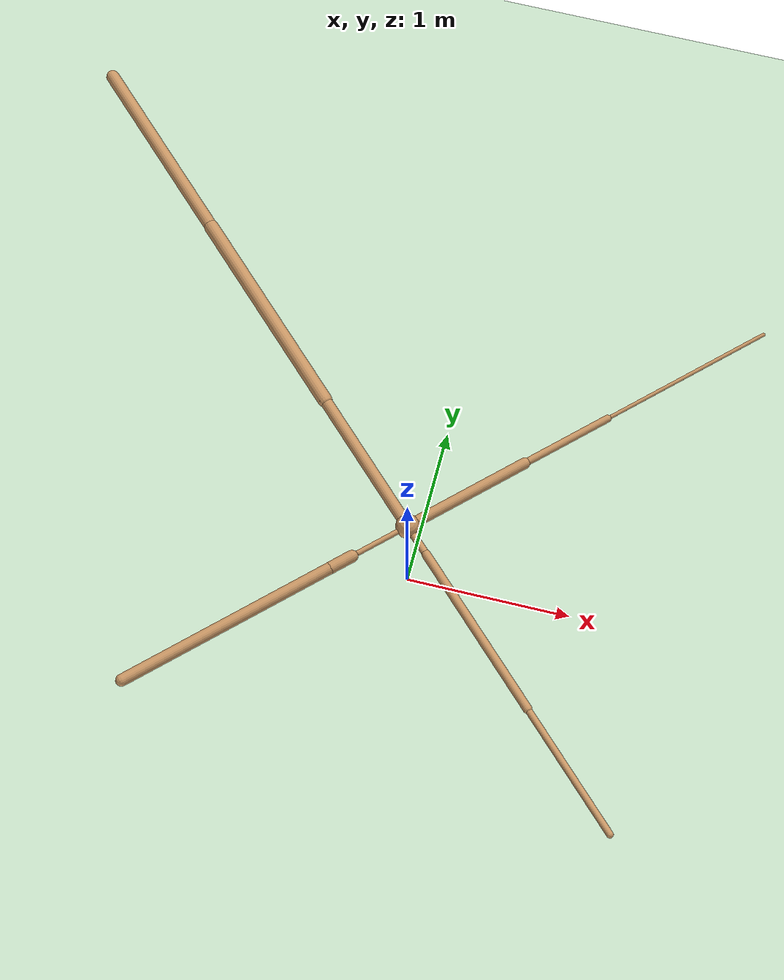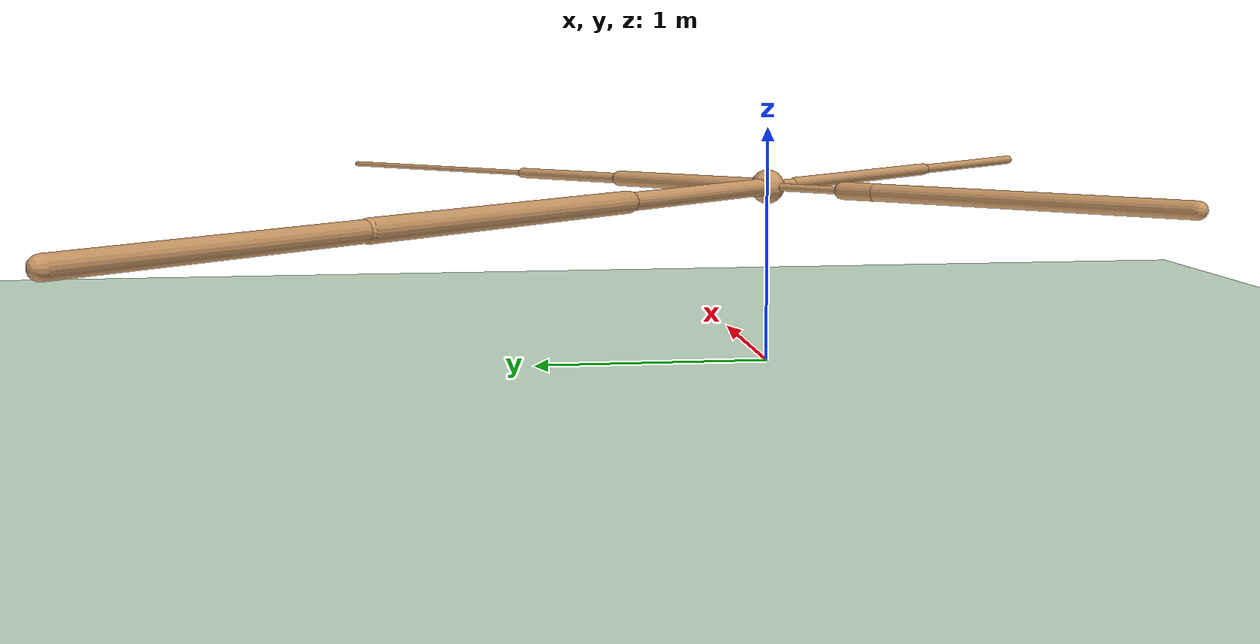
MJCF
<mujoco model="ant">
  <compiler angle="degree" coordinate="local" inertiafromgeom="true" />
  <option integrator="RK4" timestep="0.01" />
  <custom>
    <numeric data="0.0 0.0 0.55 1.0 0.0 0.0 0.0 0.0 1.0 0.0 -1.0 0.0 -1.0 0.0 1.0" name="init_qpos" />
  </custom>
  <default>
    <joint armature="1" damping="1" limited="true" />
    <geom conaffinity="0" condim="3" density="5.0" friction="1 0.5 0.5" margin="0.01" rgba="0.8 0.6 0.4 1" />
  </default>
  <asset>
    <texture builtin="gradient" height="100" rgb1="1 1 1" rgb2="0 0 0" type="skybox" width="100" />
    <texture builtin="flat" height="1278" mark="cross" markrgb="1 1 1" name="texgeom" random="0.01" rgb1="0.8 0.6 0.4" rgb2="0.8 0.6 0.4" type="cube" width="127" />
    <texture builtin="checker" height="100" name="texplane" rgb1="0 0 0" rgb2="0.8 0.8 0.8" type="2d" width="100" />
    <material name="MatPlane" reflectance="0.5" shininess="1" specular="1" texrepeat="60 60" texture="texplane" />
    <material name="geom" texture="texgeom" texuniform="true" />
  </asset>
  <worldbody>
    <light cutoff="100" diffuse="1 1 1" dir="-0 0 -1.3" directional="true" exponent="1" pos="0 0 1.3" specular=".1 .1 .1" />
    <geom conaffinity="1" condim="3" material="MatPlane" name="floor" pos="0 0 0" rgba="0.8 0.9 0.8 1" size="40 40 40" type="plane" />
    <body name="torso" pos="0 0 0.75">
      <camera name="track" mode="trackcom" pos="0 -11 5" xyaxes="1 0 0 0 0.5 1" />
      <geom name="torso_geom" pos="0 0 0" size="0.07246651500463486" type="sphere" />
      <joint armature="0" damping="0" limited="false" margin="0.01" name="root" pos="0 0 0" type="free" />
      <body name="front_left_leg" pos="0 0 0">
        <geom fromto="0 0 0 0.5680124163627625 0.5680124163627625 0" name="aux_1_geom" size="0.033780287951231" type="capsule" />
        <body name="aux_1" pos="0.5680124163627625 0.5680124163627625 0">
          <joint axis="0 0 1" name="hip_1" pos="0.0 0.0 0.0" range="-30 30" type="hinge" />
          <geom fromto="0 0 0 0.4084143340587616 0.4084143340587616 0" name="left_leg_geom" size="0.022891882807016373" type="capsule" />
          <body name="left_leg_geom_aux" pos="0.4084143340587616 0.4084143340587616 0">
            <joint axis="-1 1 0" name="ankle_1" pos="0.0 0.0 0.0" range="30 70" type="hinge" />
            <geom fromto="0 0 0 0.7805050611495972 0.7805050611495972 0" name="left_ankle_geom" size="0.011478006839752197" type="capsule" />
          </body>
        </body>
      </body>
      <body name="front_right_leg" pos="0 0 0">
        <geom fromto="0 0 0 -0.6813469529151917 0.6813469529151917 0" name="aux_2_geom" size="0.03633664920926094" type="capsule" />
        <body name="aux_2" pos="-0.6813469529151917 0.6813469529151917 0">
          <joint axis="0 0 1" name="hip_2" pos="0.0 0.0 0.0" range="-30 30" type="hinge" />
          <geom fromto="0 0 0 -0.9785953760147095 0.9785953760147095 0" name="right_leg_geom" size="0.04405323415994644" type="capsule" />
          <body name="right_leg_geom_aux" pos="-0.9785953760147095 0.9785953760147095 0">
            <joint axis="1 1 0" name="ankle_2" pos="0.0 0.0 0.0" range="-70 -30" type="hinge" />
            <geom fromto="0 0 0 -0.8842787742614746 0.8842787742614746 0" name="right_ankle_geom" size="0.04018589109182358" type="capsule" />
          </body>
        </body>
      </body>
      <body name="back_leg" pos="0 0 0">
        <geom fromto="0 0 0 -0.2670374810695648 -0.2670374810695648 0" name="aux_3_geom" size="0.016317561268806458" type="capsule" />
        <body name="aux_3" pos="-0.2670374810695648 -0.2670374810695648 0">
          <joint axis="0 0 1" name="hip_3" pos="0.0 0.0 0.0" range="-30 30" type="hinge" />
          <geom fromto="0 0 0 -0.10391348600387573 -0.10391348600387573 0" name="back_leg_geom" size="0.036988839507102966" type="capsule" />
          <body name="back_leg_geom_aux" pos="-0.10391348600387573 -0.10391348600387573 0">
            <joint axis="-1 1 0" name="ankle_3" pos="0.0 0.0 0.0" range="-70 -30" type="hinge" />
            <geom fromto="0 0 0 -0.9783459305763245 -0.9783459305763245 0" name="third_ankle_geom" size="0.03632190078496933" type="capsule" />
          </body>
        </body>
      </body>
      <body name="right_back_leg" pos="0 0 0">
        <geom fromto="0 0 0 0.148344948887825 -0.148344948887825 0" name="aux_4_geom" size="0.022580979391932487" type="capsule" />
        <body name="aux_4" pos="0.148344948887825 -0.148344948887825 0">
          <joint axis="0 0 1" name="hip_4" pos="0.0 0.0 0.0" range="-30 30" type="hinge" />
          <geom fromto="0 0 0 0.7998369932174683 -0.7998369932174683 0" name="rightback_leg_geom" size="0.027142394334077835" type="capsule" />
          <body name="rightback_leg_geom_aux" pos="0.7998369932174683 -0.7998369932174683 0">
            <joint axis="1 1 0" name="ankle_4" pos="0.0 0.0 0.0" range="30 70" type="hinge" />
            <geom fromto="0 0 0 0.6257050633430481 -0.6257050633430481 0" name="fourth_ankle_geom" size="0.02076682820916176" type="capsule" />
          </body>
        </body>
      </body>
    </body>
  </worldbody>
  <actuator>
    <motor ctrllimited="true" ctrlrange="-1.0 1.0" joint="hip_4" gear="150" />
    <motor ctrllimited="true" ctrlrange="-1.0 1.0" joint="ankle_4" gear="150" />
    <motor ctrllimited="true" ctrlrange="-1.0 1.0" joint="hip_1" gear="150" />
    <motor ctrllimited="true" ctrlrange="-1.0 1.0" joint="ankle_1" gear="150" />
    <motor ctrllimited="true" ctrlrange="-1.0 1.0" joint="hip_2" gear="150" />
    <motor ctrllimited="true" ctrlrange="-1.0 1.0" joint="ankle_2" gear="150" />
    <motor ctrllimited="true" ctrlrange="-1.0 1.0" joint="hip_3" gear="150" />
    <motor ctrllimited="true" ctrlrange="-1.0 1.0" joint="ankle_3" gear="150" />
  </actuator>
</mujoco>
